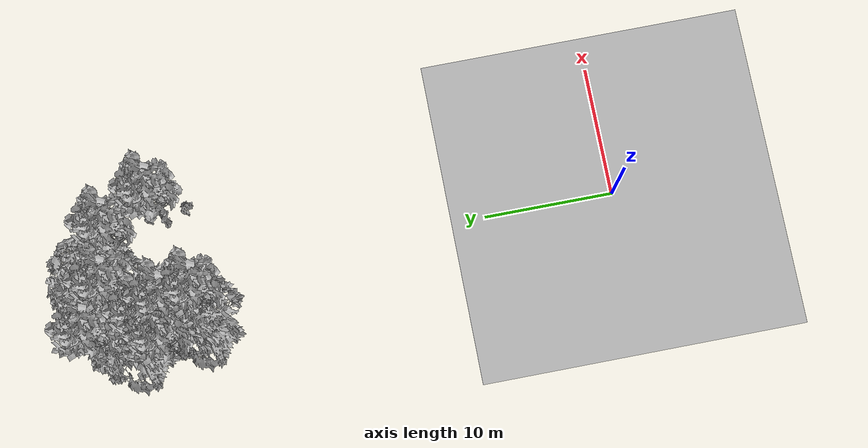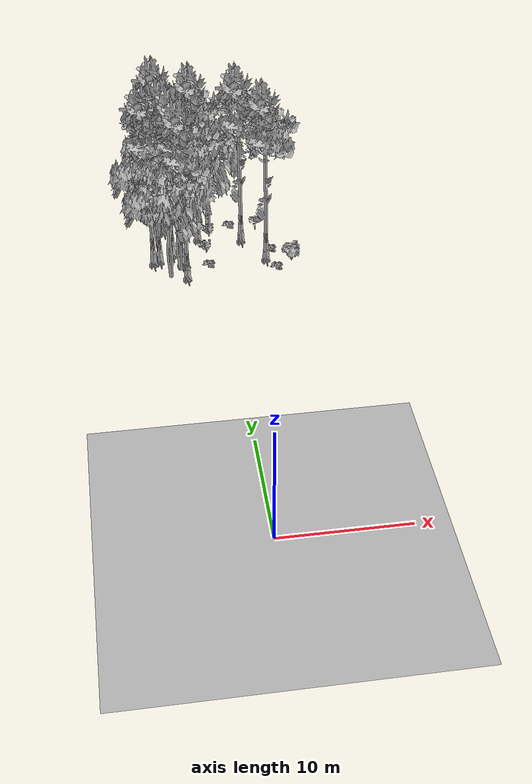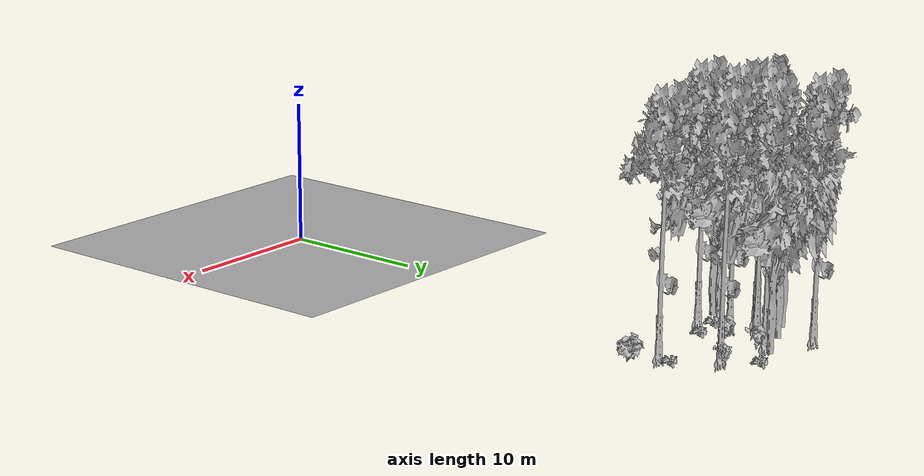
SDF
<sdf version="1.7">
 <world name="default">
  <model name="ground_plane">
   <static>1</static>
   <link name="link">
    <collision name="collision">
     <pose>-50 0 0 0 -0 0</pose>
     <geometry><plane><normal>0 0 1</normal><size>80 80</size></plane></geometry>
     <surface><contact><ode><min_depth>0.01</min_depth><max_vel>0</max_vel></ode></contact></surface>
    </collision>
    <visual name="grass">
     <cast_shadows>0</cast_shadows>
     <geometry>
      <mesh>
       <scale>0.46714285714285714 0.46714285714285714 0.1</scale>
       <uri>file://grass_plane/meshes/grass_plane.dae</uri>
      </mesh>
     </geometry>
    </visual>
   </link>
  </model>
  <model name="Tree 54">
   <static>1</static>
   <pose>4.314004915796133 34.10307973713053 0 1.57079 -0 0</pose>
   <link name="link">
    <collision name="collision">
     <geometry><mesh><scale>3.5 5 3.5</scale><uri>model://tree_9/meshes/tree_9.obj</uri></mesh></geometry>
    </collision>
    <visual name="visual">
     <geometry><mesh><scale>3.5 5 3.5</scale><uri>model://tree_9/meshes/tree_9.obj</uri></mesh></geometry>
    </visual>
   </link>
  </model>
  <model name="Tree 85">
   <static>1</static>
   <pose>-5.380718765578244 37.048795434983745 0 1.57079 -0 0</pose>
   <link name="link">
    <collision name="collision">
     <geometry><mesh><scale>3.5 5 3.5</scale><uri>model://tree_2/meshes/tree_2.obj</uri></mesh></geometry>
    </collision>
    <visual name="visual">
     <geometry><mesh><scale>3.5 5 3.5</scale><uri>model://tree_2/meshes/tree_2.obj</uri></mesh></geometry>
    </visual>
   </link>
  </model>
  <model name="Tree 143">
   <static>1</static>
   <pose>-3.3656488328589376 34.33064634555673 0 1.57079 -0 0</pose>
   <link name="link">
    <collision name="collision">
     <geometry><mesh><scale>3.5 5 3.5</scale><uri>model://tree_9/meshes/tree_9.obj</uri></mesh></geometry>
    </collision>
    <visual name="visual">
     <geometry><mesh><scale>3.5 5 3.5</scale><uri>model://tree_9/meshes/tree_9.obj</uri></mesh></geometry>
    </visual>
   </link>
  </model>
  <model name="Tree 255">
   <static>1</static>
   <pose>-5.881161403407056 34.81074678164363 0 1.57079 -0 0</pose>
   <link name="link">
    <collision name="collision">
     <geometry><mesh><scale>3.5 5 3.5</scale><uri>model://tree_9/meshes/tree_9.obj</uri></mesh></geometry>
    </collision>
    <visual name="visual">
     <geometry><mesh><scale>3.5 5 3.5</scale><uri>model://tree_9/meshes/tree_9.obj</uri></mesh></geometry>
    </visual>
   </link>
  </model>
  <model name="Tree 344">
   <static>1</static>
   <pose>-4.5641767736955074 32.24897552668567 0 1.57079 -0 0</pose>
   <link name="link">
    <collision name="collision">
     <geometry><mesh><scale>3.5 5 3.5</scale><uri>model://tree_2/meshes/tree_2.obj</uri></mesh></geometry>
    </collision>
    <visual name="visual">
     <geometry><mesh><scale>3.5 5 3.5</scale><uri>model://tree_2/meshes/tree_2.obj</uri></mesh></geometry>
    </visual>
   </link>
  </model>
  <model name="Tree 346">
   <static>1</static>
   <pose>-5.289217324718109 35.05203111374425 0 1.57079 -0 0</pose>
   <link name="link">
    <collision name="collision">
     <geometry><mesh><scale>3.5 5 3.5</scale><uri>model://tree_9/meshes/tree_9.obj</uri></mesh></geometry>
    </collision>
    <visual name="visual">
     <geometry><mesh><scale>3.5 5 3.5</scale><uri>model://tree_9/meshes/tree_9.obj</uri></mesh></geometry>
    </visual>
   </link>
  </model>
  <model name="Tree 372">
   <static>1</static>
   <pose>-3.652582312819476 33.35617313122421 0 1.57079 -0 0</pose>
   <link name="link">
    <collision name="collision">
     <geometry><mesh><scale>3.5 5 3.5</scale><uri>model://tree_2/meshes/tree_2.obj</uri></mesh></geometry>
    </collision>
    <visual name="visual">
     <geometry><mesh><scale>3.5 5 3.5</scale><uri>model://tree_2/meshes/tree_2.obj</uri></mesh></geometry>
    </visual>
   </link>
  </model>
  <model name="Tree 483">
   <static>1</static>
   <pose>-3.0433138306819245 32.09278961921987 0 1.57079 -0 0</pose>
   <link name="link">
    <collision name="collision">
     <geometry><mesh><scale>3.5 5 3.5</scale><uri>model://tree_9/meshes/tree_9.obj</uri></mesh></geometry>
    </collision>
    <visual name="visual">
     <geometry><mesh><scale>3.5 5 3.5</scale><uri>model://tree_9/meshes/tree_9.obj</uri></mesh></geometry>
    </visual>
   </link>
  </model>
  <model name="Tree 539">
   <static>1</static>
   <pose>-3.3220221582320875 38.01021207604816 0 1.57079 -0 0</pose>
   <link name="link">
    <collision name="collision">
     <geometry><mesh><scale>3.5 5 3.5</scale><uri>model://tree_2/meshes/tree_2.obj</uri></mesh></geometry>
    </collision>
    <visual name="visual">
     <geometry><mesh><scale>3.5 5 3.5</scale><uri>model://tree_2/meshes/tree_2.obj</uri></mesh></geometry>
    </visual>
   </link>
  </model>
  <model name="Tree 554">
   <static>1</static>
   <pose>-4.582793714467158 39.81564542463414 0 1.57079 -0 0</pose>
   <link name="link">
    <collision name="collision">
     <geometry><mesh><scale>3.5 5 3.5</scale><uri>model://tree_9/meshes/tree_9.obj</uri></mesh></geometry>
    </collision>
    <visual name="visual">
     <geometry><mesh><scale>3.5 5 3.5</scale><uri>model://tree_9/meshes/tree_9.obj</uri></mesh></geometry>
    </visual>
   </link>
  </model>
  <model name="Tree 566">
   <static>1</static>
   <pose>-0.5206891591763423 39.220759391668224 0 1.57079 -0 0</pose>
   <link name="link">
    <collision name="collision">
     <geometry><mesh><scale>3.5 5 3.5</scale><uri>model://tree_2/meshes/tree_2.obj</uri></mesh></geometry>
    </collision>
    <visual name="visual">
     <geometry><mesh><scale>3.5 5 3.5</scale><uri>model://tree_2/meshes/tree_2.obj</uri></mesh></geometry>
    </visual>
   </link>
  </model>
  <model name="Tree 598">
   <static>1</static>
   <pose>-4.081326328133237 35.87518278596869 0 1.57079 -0 0</pose>
   <link name="link">
    <collision name="collision">
     <geometry><mesh><scale>3.5 5 3.5</scale><uri>model://tree_9/meshes/tree_9.obj</uri></mesh></geometry>
    </collision>
    <visual name="visual">
     <geometry><mesh><scale>3.5 5 3.5</scale><uri>model://tree_9/meshes/tree_9.obj</uri></mesh></geometry>
    </visual>
   </link>
  </model>
  <model name="Tree 610">
   <static>1</static>
   <pose>-1.541621182320931 38.117044682742375 0 1.57079 -0 0</pose>
   <link name="link">
    <collision name="collision">
     <geometry><mesh><scale>3.5 5 3.5</scale><uri>model://tree_9/meshes/tree_9.obj</uri></mesh></geometry>
    </collision>
    <visual name="visual">
     <geometry><mesh><scale>3.5 5 3.5</scale><uri>model://tree_9/meshes/tree_9.obj</uri></mesh></geometry>
    </visual>
   </link>
  </model>
  <model name="Tree 628">
   <static>1</static>
   <pose>2.4359026568496773 37.42126536372872 0 1.57079 -0 0</pose>
   <link name="link">
    <collision name="collision">
     <geometry><mesh><scale>3.5 5 3.5</scale><uri>model://tree_9/meshes/tree_9.obj</uri></mesh></geometry>
    </collision>
    <visual name="visual">
     <geometry><mesh><scale>3.5 5 3.5</scale><uri>model://tree_9/meshes/tree_9.obj</uri></mesh></geometry>
    </visual>
   </link>
  </model>
  <model name="Bush 16">
   <static>1</static>
   <pose>3.950206969594092 38.73611436139639 0 1.57079 -0 0</pose>
   <link name="link">
    <collision name="collision">
     <geometry><mesh><scale>2 2 2</scale><uri>model://bush_5/meshes/bush_5.obj</uri></mesh></geometry>
     <surface><contact><collide_without_contact>false</collide_without_contact></contact></surface>
    </collision>
    <visual name="visual">
     <geometry><mesh><scale>2 2 2</scale><uri>model://bush_5/meshes/bush_5.obj</uri></mesh></geometry>
    </visual>
   </link>
  </model>
  <model name="Bush 43">
   <static>1</static>
   <pose>-3.1699617536863016 33.130179795615305 0 1.57079 -0 0</pose>
   <link name="link">
    <collision name="collision">
     <geometry><mesh><scale>2 2 2</scale><uri>model://bush_2/meshes/bush_2.obj</uri></mesh></geometry>
     <surface><contact><collide_without_contact>false</collide_without_contact></contact></surface>
    </collision>
    <visual name="visual">
     <geometry><mesh><scale>2 2 2</scale><uri>model://bush_2/meshes/bush_2.obj</uri></mesh></geometry>
    </visual>
   </link>
  </model>
  <model name="Bush 44">
   <static>1</static>
   <pose>4.895883101410433 35.2952469578846 0 1.57079 -0 0</pose>
   <link name="link">
    <collision name="collision">
     <geometry><mesh><scale>2 2 2</scale><uri>model://bush_2/meshes/bush_2.obj</uri></mesh></geometry>
     <surface><contact><collide_without_contact>false</collide_without_contact></contact></surface>
    </collision>
    <visual name="visual">
     <geometry><mesh><scale>2 2 2</scale><uri>model://bush_2/meshes/bush_2.obj</uri></mesh></geometry>
    </visual>
   </link>
  </model>
  <model name="Bush 77">
   <static>1</static>
   <pose>1.5191309054263868 39.715228375425 0 1.57079 -0 0</pose>
   <link name="link">
    <collision name="collision">
     <geometry><mesh><scale>2 2 2</scale><uri>model://bush_2/meshes/bush_2.obj</uri></mesh></geometry>
     <surface><contact><collide_without_contact>false</collide_without_contact></contact></surface>
    </collision>
    <visual name="visual">
     <geometry><mesh><scale>2 2 2</scale><uri>model://bush_2/meshes/bush_2.obj</uri></mesh></geometry>
    </visual>
   </link>
  </model>
  <model name="Bush 161">
   <static>1</static>
   <pose>5.066080702795659 32.436622856765595 0 1.57079 -0 0</pose>
   <link name="link">
    <collision name="collision">
     <geometry><mesh><scale>2 2 2</scale><uri>model://bush_2/meshes/bush_2.obj</uri></mesh></geometry>
     <surface><contact><collide_without_contact>false</collide_without_contact></contact></surface>
    </collision>
    <visual name="visual">
     <geometry><mesh><scale>2 2 2</scale><uri>model://bush_2/meshes/bush_2.obj</uri></mesh></geometry>
    </visual>
   </link>
  </model>
  <model name="Bush 296">
   <static>1</static>
   <pose>-1.002235275447397 35.57847198795535 0 1.57079 -0 0</pose>
   <link name="link">
    <collision name="collision">
     <geometry><mesh><scale>2 2 2</scale><uri>model://bush_0/meshes/bush_0.obj</uri></mesh></geometry>
     <surface><contact><collide_without_contact>false</collide_without_contact></contact></surface>
    </collision>
    <visual name="visual">
     <geometry><mesh><scale>2 2 2</scale><uri>model://bush_0/meshes/bush_0.obj</uri></mesh></geometry>
    </visual>
   </link>
  </model>
  <model name="Bush 386">
   <static>1</static>
   <pose>-0.9453905567800476 33.588813353453276 0 1.57079 -0 0</pose>
   <link name="link">
    <collision name="collision">
     <geometry><mesh><scale>2 2 2</scale><uri>model://bush_2/meshes/bush_2.obj</uri></mesh></geometry>
     <surface><contact><collide_without_contact>false</collide_without_contact></contact></surface>
    </collision>
    <visual name="visual">
     <geometry><mesh><scale>2 2 2</scale><uri>model://bush_2/meshes/bush_2.obj</uri></mesh></geometry>
    </visual>
   </link>
  </model>
  <model name="Bush 392">
   <static>1</static>
   <pose>-0.48090683799698297 38.186095069575074 0 1.57079 -0 0</pose>
   <link name="link">
    <collision name="collision">
     <geometry><mesh><scale>2 2 2</scale><uri>model://bush_0/meshes/bush_0.obj</uri></mesh></geometry>
     <surface><contact><collide_without_contact>false</collide_without_contact></contact></surface>
    </collision>
    <visual name="visual">
     <geometry><mesh><scale>2 2 2</scale><uri>model://bush_0/meshes/bush_0.obj</uri></mesh></geometry>
    </visual>
   </link>
  </model>
  <model name="Bush 480">
   <static>1</static>
   <pose>6.534078044693786 33.28557505734808 0 1.57079 -0 0</pose>
   <link name="link">
    <collision name="collision">
     <geometry><mesh><scale>2 2 2</scale><uri>model://bush_1/meshes/bush_1.obj</uri></mesh></geometry>
     <surface><contact><collide_without_contact>false</collide_without_contact></contact></surface>
    </collision>
    <visual name="visual">
     <geometry><mesh><scale>2 2 2</scale><uri>model://bush_1/meshes/bush_1.obj</uri></mesh></geometry>
    </visual>
   </link>
  </model>
 </world>
</sdf>
